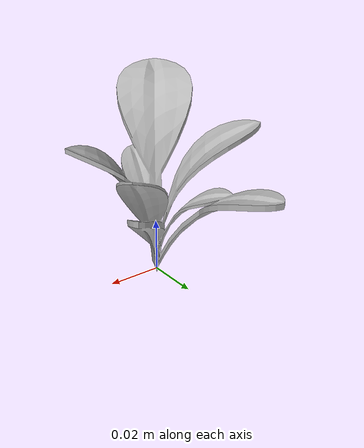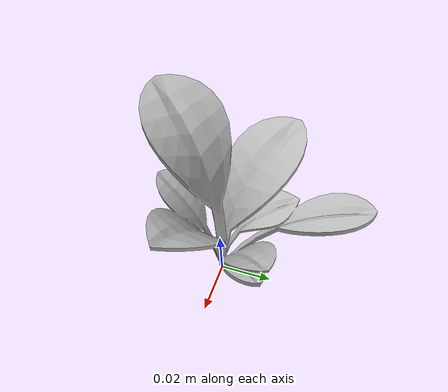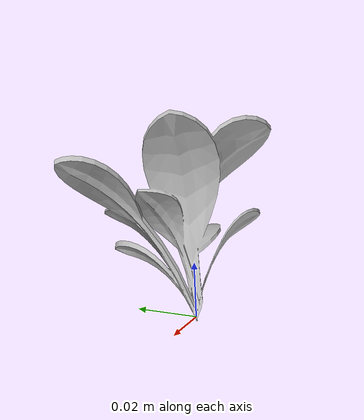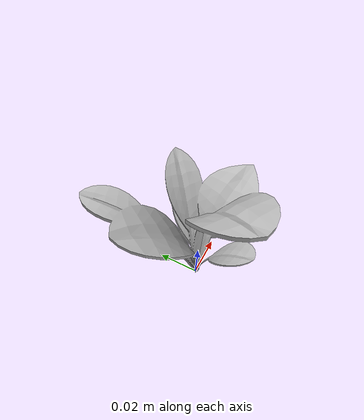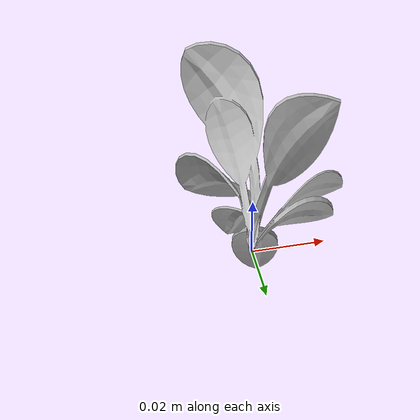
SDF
<sdf version="1.6">
  <model name="sugar_beet_28">
    <static>true</static>
    <link name="body">
      <visual name="visual">
        <geometry>
          <mesh>
            <uri>file:///sugar_beet_28/media/sugar_beet.dae</uri>
          </mesh>
        </geometry>
      </visual>
    </link>
  </model>
</sdf>
